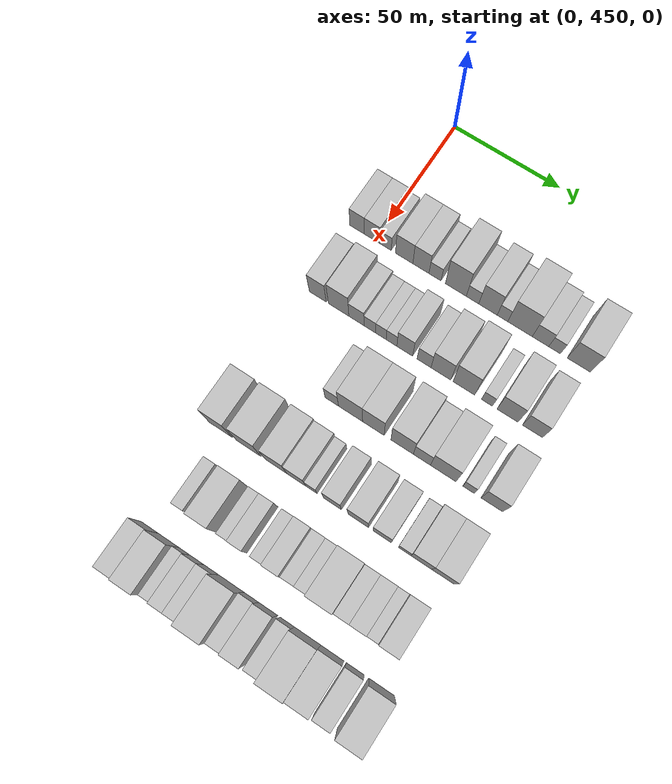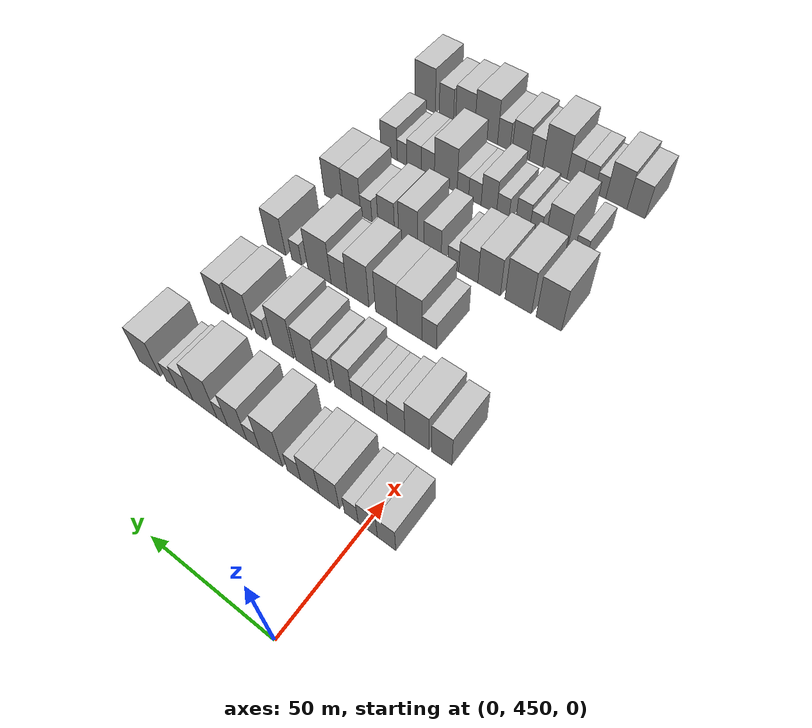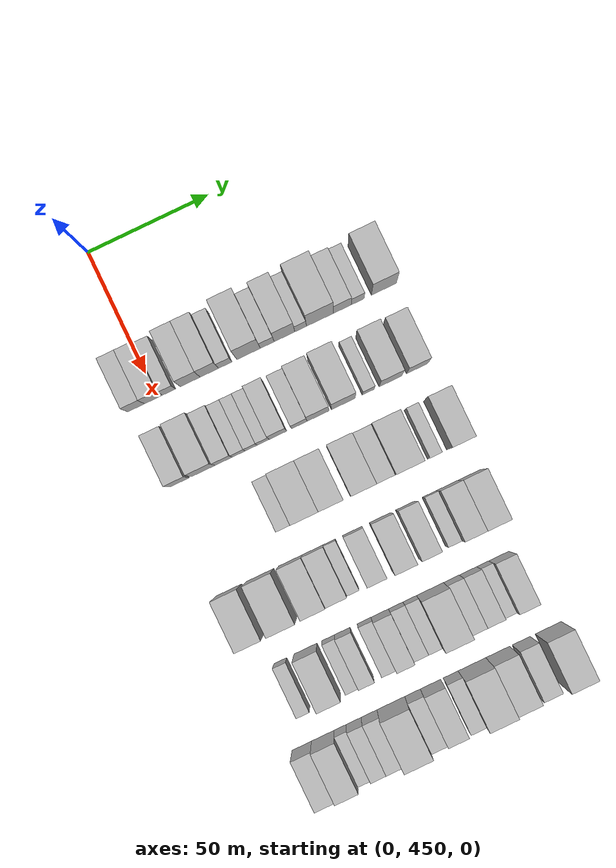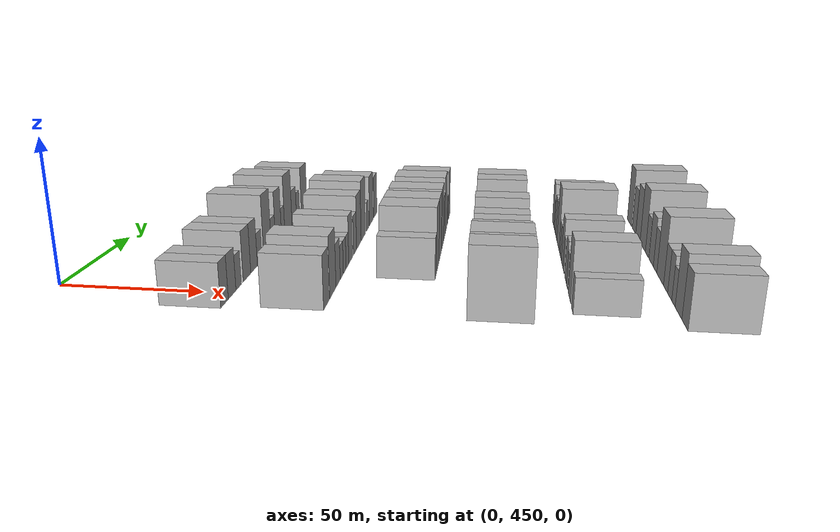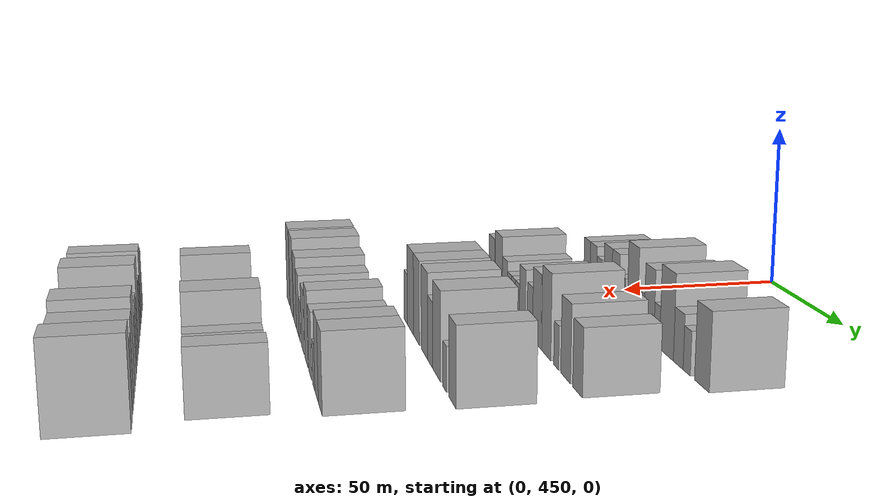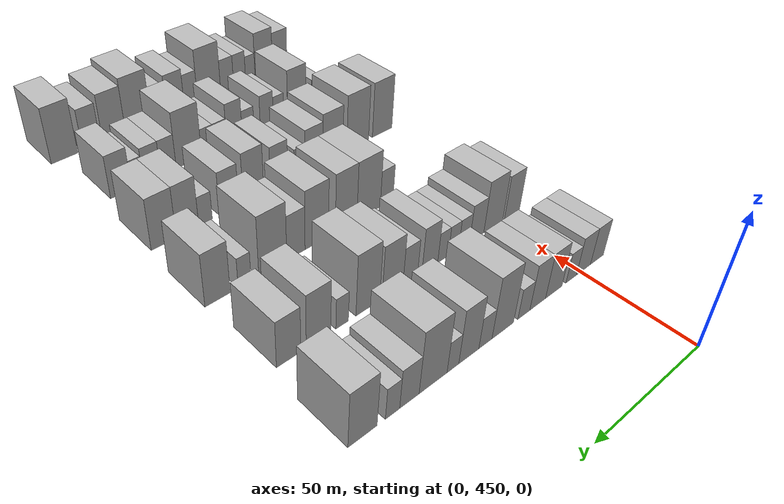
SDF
<sdf version="1.6">
 <world name="default">
  <model name="building_102">
   <static>1</static>
   <pose>50.0000 441.4241 0 0.000000 0.000000 0.000000</pose>
   <link name="link">
    <pose>0 0 7.50 0 0 0</pose>
    <collision name="collision"><geometry><box><size>20.0000 6.9413 15.0000</size></box></geometry></collision>
    <visual name="visual">
     <cast_shadows>0</cast_shadows>
     <geometry><box><size>20.0000 6.9413 15.0000</size></box></geometry>
     <material>
      <script>
       <uri>model://HANNAS_wall/materials/scripts</uri>
       <uri>model://HANNAS_wall/materials/textures</uri>
       <name>vrc/HANNAS_wall</name>
      </script>
     </material>
    </visual>
   </link>
  </model>
  <model name="building_103">
   <static>1</static>
   <pose>50.0000 448.5748 0 0.000000 0.000000 0.000000</pose>
   <link name="link">
    <pose>0 0 7.50 0 0 0</pose>
    <collision name="collision"><geometry><box><size>20.0000 7.3600 15.0000</size></box></geometry></collision>
    <visual name="visual">
     <cast_shadows>0</cast_shadows>
     <geometry><box><size>20.0000 7.3600 15.0000</size></box></geometry>
     <material>
      <script>
       <uri>model://HANNAS_wall/materials/scripts</uri>
       <uri>model://HANNAS_wall/materials/textures</uri>
       <name>vrc/HANNAS_wall</name>
      </script>
     </material>
    </visual>
   </link>
  </model>
  <model name="building_104">
   <static>1</static>
   <pose>50.0000 454.9493 0 0.000000 0.000000 0.000000</pose>
   <link name="link">
    <pose>0 0 6.00 0 0 0</pose>
    <collision name="collision"><geometry><box><size>20.0000 5.3890 12.0000</size></box></geometry></collision>
    <visual name="visual">
     <cast_shadows>0</cast_shadows>
     <geometry><box><size>20.0000 5.3890 12.0000</size></box></geometry>
     <material>
      <script>
       <uri>model://HANNAS_wall/materials/scripts</uri>
       <uri>model://HANNAS_wall/materials/textures</uri>
       <name>vrc/HANNAS_wall</name>
      </script>
     </material>
    </visual>
   </link>
  </model>
  <model name="building_105">
   <static>1</static>
   <pose>50.0000 463.7179 0 0.000000 0.000000 0.000000</pose>
   <link name="link">
    <pose>0 0 9.00 0 0 0</pose>
    <collision name="collision"><geometry><box><size>20.0000 8.1482 18.0000</size></box></geometry></collision>
    <visual name="visual">
     <cast_shadows>0</cast_shadows>
     <geometry><box><size>20.0000 8.1482 18.0000</size></box></geometry>
     <material>
      <script>
       <uri>model://HANNAS_wall/materials/scripts</uri>
       <uri>model://HANNAS_wall/materials/textures</uri>
       <name>vrc/HANNAS_wall</name>
      </script>
     </material>
    </visual>
   </link>
  </model>
  <model name="building_106">
   <static>1</static>
   <pose>50.0000 471.5602 0 0.000000 0.000000 0.000000</pose>
   <link name="link">
    <pose>0 0 9.00 0 0 0</pose>
    <collision name="collision"><geometry><box><size>20.0000 7.5363 18.0000</size></box></geometry></collision>
    <visual name="visual">
     <cast_shadows>0</cast_shadows>
     <geometry><box><size>20.0000 7.5363 18.0000</size></box></geometry>
     <material>
      <script>
       <uri>model://HANNAS_wall/materials/scripts</uri>
       <uri>model://HANNAS_wall/materials/textures</uri>
       <name>vrc/HANNAS_wall</name>
      </script>
     </material>
    </visual>
   </link>
  </model>
  <model name="building_107">
   <static>1</static>
   <pose>50.0000 478.1334 0 0.000000 0.000000 0.000000</pose>
   <link name="link">
    <pose>0 0 6.00 0 0 0</pose>
    <collision name="collision"><geometry><box><size>20.0000 5.6101 12.0000</size></box></geometry></collision>
    <visual name="visual">
     <cast_shadows>0</cast_shadows>
     <geometry><box><size>20.0000 5.6101 12.0000</size></box></geometry>
     <material>
      <script>
       <uri>model://HANNAS_wall/materials/scripts</uri>
       <uri>model://HANNAS_wall/materials/textures</uri>
       <name>vrc/HANNAS_wall</name>
      </script>
     </material>
    </visual>
   </link>
  </model>
  <model name="building_108">
   <static>1</static>
   <pose>50.0000 487.7715 0 0.000000 0.000000 0.000000</pose>
   <link name="link">
    <pose>0 0 12.00 0 0 0</pose>
    <collision name="collision"><geometry><box><size>20.0000 9.6661 24.0000</size></box></geometry></collision>
    <visual name="visual">
     <cast_shadows>0</cast_shadows>
     <geometry><box><size>20.0000 9.6661 24.0000</size></box></geometry>
     <material>
      <script>
       <uri>model://HANNAS_wall/materials/scripts</uri>
       <uri>model://HANNAS_wall/materials/textures</uri>
       <name>vrc/HANNAS_wall</name>
      </script>
     </material>
    </visual>
   </link>
  </model>
  <model name="building_109">
   <static>1</static>
   <pose>50.0000 495.4638 0 0.000000 0.000000 0.000000</pose>
   <link name="link">
    <pose>0 0 6.00 0 0 0</pose>
    <collision name="collision"><geometry><box><size>20.0000 5.7185 12.0000</size></box></geometry></collision>
    <visual name="visual">
     <cast_shadows>0</cast_shadows>
     <geometry><box><size>20.0000 5.7185 12.0000</size></box></geometry>
     <material>
      <script>
       <uri>model://HANNAS_wall/materials/scripts</uri>
       <uri>model://HANNAS_wall/materials/textures</uri>
       <name>vrc/HANNAS_wall</name>
      </script>
     </material>
    </visual>
   </link>
  </model>
  <model name="building_110">
   <static>1</static>
   <pose>50.0000 502.5486 0 0.000000 0.000000 0.000000</pose>
   <link name="link">
    <pose>0 0 10.50 0 0 0</pose>
    <collision name="collision"><geometry><box><size>20.0000 8.4511 21.0000</size></box></geometry></collision>
    <visual name="visual">
     <cast_shadows>0</cast_shadows>
     <geometry><box><size>20.0000 8.4511 21.0000</size></box></geometry>
     <material>
      <script>
       <uri>model://HANNAS_wall/materials/scripts</uri>
       <uri>model://HANNAS_wall/materials/textures</uri>
       <name>vrc/HANNAS_wall</name>
      </script>
     </material>
    </visual>
   </link>
  </model>
  <model name="building_111">
   <static>1</static>
   <pose>50.0000 509.1893 0 0.000000 0.000000 0.000000</pose>
   <link name="link">
    <pose>0 0 6.00 0 0 0</pose>
    <collision name="collision"><geometry><box><size>20.0000 4.8303 12.0000</size></box></geometry></collision>
    <visual name="visual">
     <cast_shadows>0</cast_shadows>
     <geometry><box><size>20.0000 4.8303 12.0000</size></box></geometry>
     <material>
      <script>
       <uri>model://HANNAS_wall/materials/scripts</uri>
       <uri>model://HANNAS_wall/materials/textures</uri>
       <name>vrc/HANNAS_wall</name>
      </script>
     </material>
    </visual>
   </link>
  </model>
  <model name="building_112">
   <static>1</static>
   <pose>50.0000 517.1288 0 0.000000 0.000000 0.000000</pose>
   <link name="link">
    <pose>0 0 12.00 0 0 0</pose>
    <collision name="collision"><geometry><box><size>20.0000 11.0485 24.0000</size></box></geometry></collision>
    <visual name="visual">
     <cast_shadows>0</cast_shadows>
     <geometry><box><size>20.0000 11.0485 24.0000</size></box></geometry>
     <material>
      <script>
       <uri>model://HANNAS_wall/materials/scripts</uri>
       <uri>model://HANNAS_wall/materials/textures</uri>
       <name>vrc/HANNAS_wall</name>
      </script>
     </material>
    </visual>
   </link>
  </model>
  <model name="building_113">
   <static>1</static>
   <pose>50.0000 526.3390 0 0.000000 0.000000 0.000000</pose>
   <link name="link">
    <pose>0 0 7.50 0 0 0</pose>
    <collision name="collision"><geometry><box><size>20.0000 7.3720 15.0000</size></box></geometry></collision>
    <visual name="visual">
     <cast_shadows>0</cast_shadows>
     <geometry><box><size>20.0000 7.3720 15.0000</size></box></geometry>
     <material>
      <script>
       <uri>model://HANNAS_wall/materials/scripts</uri>
       <uri>model://HANNAS_wall/materials/textures</uri>
       <name>vrc/HANNAS_wall</name>
      </script>
     </material>
    </visual>
   </link>
  </model>
  <model name="building_114">
   <static>1</static>
   <pose>50.0000 532.6628 0 0.000000 0.000000 0.000000</pose>
   <link name="link">
    <pose>0 0 6.00 0 0 0</pose>
    <collision name="collision"><geometry><box><size>20.0000 5.2757 12.0000</size></box></geometry></collision>
    <visual name="visual">
     <cast_shadows>0</cast_shadows>
     <geometry><box><size>20.0000 5.2757 12.0000</size></box></geometry>
     <material>
      <script>
       <uri>model://HANNAS_wall/materials/scripts</uri>
       <uri>model://HANNAS_wall/materials/textures</uri>
       <name>vrc/HANNAS_wall</name>
      </script>
     </material>
    </visual>
   </link>
  </model>
  <model name="building_115">
   <static>1</static>
   <pose>50.0000 543.4396 0 0.000000 0.000000 0.000000</pose>
   <link name="link">
    <pose>0 0 10.50 0 0 0</pose>
    <collision name="collision"><geometry><box><size>20.0000 10.2780 21.0000</size></box></geometry></collision>
    <visual name="visual">
     <cast_shadows>0</cast_shadows>
     <geometry><box><size>20.0000 10.2780 21.0000</size></box></geometry>
     <material>
      <script>
       <uri>model://HANNAS_wall/materials/scripts</uri>
       <uri>model://HANNAS_wall/materials/textures</uri>
       <name>vrc/HANNAS_wall</name>
      </script>
     </material>
    </visual>
   </link>
  </model>
  <model name="building_225">
   <static>1</static>
   <pose>82.0000 444.1324 0 0.000000 0.000000 0.000000</pose>
   <link name="link">
    <pose>0 0 9.00 0 0 0</pose>
    <collision name="collision"><geometry><box><size>20.0000 7.9593 18.0000</size></box></geometry></collision>
    <visual name="visual">
     <cast_shadows>0</cast_shadows>
     <geometry><box><size>20.0000 7.9593 18.0000</size></box></geometry>
     <material>
      <script>
       <uri>model://HANNAS_wall/materials/scripts</uri>
       <uri>model://HANNAS_wall/materials/textures</uri>
       <name>vrc/HANNAS_wall</name>
      </script>
     </material>
    </visual>
   </link>
  </model>
  <model name="building_226">
   <static>1</static>
   <pose>82.0000 453.9061 0 0.000000 0.000000 0.000000</pose>
   <link name="link">
    <pose>0 0 10.50 0 0 0</pose>
    <collision name="collision"><geometry><box><size>20.0000 9.5882 21.0000</size></box></geometry></collision>
    <visual name="visual">
     <cast_shadows>0</cast_shadows>
     <geometry><box><size>20.0000 9.5882 21.0000</size></box></geometry>
     <material>
      <script>
       <uri>model://HANNAS_wall/materials/scripts</uri>
       <uri>model://HANNAS_wall/materials/textures</uri>
       <name>vrc/HANNAS_wall</name>
      </script>
     </material>
    </visual>
   </link>
  </model>
  <model name="building_227">
   <static>1</static>
   <pose>82.0000 462.2295 0 0.000000 0.000000 0.000000</pose>
   <link name="link">
    <pose>0 0 7.50 0 0 0</pose>
    <collision name="collision"><geometry><box><size>20.0000 7.0585 15.0000</size></box></geometry></collision>
    <visual name="visual">
     <cast_shadows>0</cast_shadows>
     <geometry><box><size>20.0000 7.0585 15.0000</size></box></geometry>
     <material>
      <script>
       <uri>model://HANNAS_wall/materials/scripts</uri>
       <uri>model://HANNAS_wall/materials/textures</uri>
       <name>vrc/HANNAS_wall</name>
      </script>
     </material>
    </visual>
   </link>
  </model>
  <model name="building_228">
   <static>1</static>
   <pose>82.0000 468.4311 0 0.000000 0.000000 0.000000</pose>
   <link name="link">
    <pose>0 0 6.00 0 0 0</pose>
    <collision name="collision"><geometry><box><size>20.0000 5.3446 12.0000</size></box></geometry></collision>
    <visual name="visual">
     <cast_shadows>0</cast_shadows>
     <geometry><box><size>20.0000 5.3446 12.0000</size></box></geometry>
     <material>
      <script>
       <uri>model://HANNAS_wall/materials/scripts</uri>
       <uri>model://HANNAS_wall/materials/textures</uri>
       <name>vrc/HANNAS_wall</name>
      </script>
     </material>
    </visual>
   </link>
  </model>
  <model name="building_229">
   <static>1</static>
   <pose>82.0000 473.5592 0 0.000000 0.000000 0.000000</pose>
   <link name="link">
    <pose>0 0 6.00 0 0 0</pose>
    <collision name="collision"><geometry><box><size>20.0000 4.9115 12.0000</size></box></geometry></collision>
    <visual name="visual">
     <cast_shadows>0</cast_shadows>
     <geometry><box><size>20.0000 4.9115 12.0000</size></box></geometry>
     <material>
      <script>
       <uri>model://HANNAS_wall/materials/scripts</uri>
       <uri>model://HANNAS_wall/materials/textures</uri>
       <name>vrc/HANNAS_wall</name>
      </script>
     </material>
    </visual>
   </link>
  </model>
  <model name="building_230">
   <static>1</static>
   <pose>82.0000 478.4736 0 0.000000 0.000000 0.000000</pose>
   <link name="link">
    <pose>0 0 6.00 0 0 0</pose>
    <collision name="collision"><geometry><box><size>20.0000 4.9173 12.0000</size></box></geometry></collision>
    <visual name="visual">
     <cast_shadows>0</cast_shadows>
     <geometry><box><size>20.0000 4.9173 12.0000</size></box></geometry>
     <material>
      <script>
       <uri>model://HANNAS_wall/materials/scripts</uri>
       <uri>model://HANNAS_wall/materials/textures</uri>
       <name>vrc/HANNAS_wall</name>
      </script>
     </material>
    </visual>
   </link>
  </model>
  <model name="building_231">
   <static>1</static>
   <pose>82.0000 484.5443 0 0.000000 0.000000 0.000000</pose>
   <link name="link">
    <pose>0 0 9.00 0 0 0</pose>
    <collision name="collision"><geometry><box><size>20.0000 7.2240 18.0000</size></box></geometry></collision>
    <visual name="visual">
     <cast_shadows>0</cast_shadows>
     <geometry><box><size>20.0000 7.2240 18.0000</size></box></geometry>
     <material>
      <script>
       <uri>model://HANNAS_wall/materials/scripts</uri>
       <uri>model://HANNAS_wall/materials/textures</uri>
       <name>vrc/HANNAS_wall</name>
      </script>
     </material>
    </visual>
   </link>
  </model>
  <model name="building_232">
   <static>1</static>
   <pose>82.0000 493.3401 0 0.000000 0.000000 0.000000</pose>
   <link name="link">
    <pose>0 0 7.50 0 0 0</pose>
    <collision name="collision"><geometry><box><size>20.0000 6.3677 15.0000</size></box></geometry></collision>
    <visual name="visual">
     <cast_shadows>0</cast_shadows>
     <geometry><box><size>20.0000 6.3677 15.0000</size></box></geometry>
     <material>
      <script>
       <uri>model://HANNAS_wall/materials/scripts</uri>
       <uri>model://HANNAS_wall/materials/textures</uri>
       <name>vrc/HANNAS_wall</name>
      </script>
     </material>
    </visual>
   </link>
  </model>
  <model name="building_233">
   <static>1</static>
   <pose>82.0000 500.9981 0 0.000000 0.000000 0.000000</pose>
   <link name="link">
    <pose>0 0 10.50 0 0 0</pose>
    <collision name="collision"><geometry><box><size>20.0000 8.9482 21.0000</size></box></geometry></collision>
    <visual name="visual">
     <cast_shadows>0</cast_shadows>
     <geometry><box><size>20.0000 8.9482 21.0000</size></box></geometry>
     <material>
      <script>
       <uri>model://HANNAS_wall/materials/scripts</uri>
       <uri>model://HANNAS_wall/materials/textures</uri>
       <name>vrc/HANNAS_wall</name>
      </script>
     </material>
    </visual>
   </link>
  </model>
  <model name="building_234">
   <static>1</static>
   <pose>82.0000 511.3419 0 0.000000 0.000000 0.000000</pose>
   <link name="link">
    <pose>0 0 12.00 0 0 0</pose>
    <collision name="collision"><geometry><box><size>20.0000 9.7395 24.0000</size></box></geometry></collision>
    <visual name="visual">
     <cast_shadows>0</cast_shadows>
     <geometry><box><size>20.0000 9.7395 24.0000</size></box></geometry>
     <material>
      <script>
       <uri>model://HANNAS_wall/materials/scripts</uri>
       <uri>model://HANNAS_wall/materials/textures</uri>
       <name>vrc/HANNAS_wall</name>
      </script>
     </material>
    </visual>
   </link>
  </model>
  <model name="building_235">
   <static>1</static>
   <pose>82.0000 521.6767 0 0.000000 0.000000 0.000000</pose>
   <link name="link">
    <pose>0 0 6.00 0 0 0</pose>
    <collision name="collision"><geometry><box><size>20.0000 4.9303 12.0000</size></box></geometry></collision>
    <visual name="visual">
     <cast_shadows>0</cast_shadows>
     <geometry><box><size>20.0000 4.9303 12.0000</size></box></geometry>
     <material>
      <script>
       <uri>model://HANNAS_wall/materials/scripts</uri>
       <uri>model://HANNAS_wall/materials/textures</uri>
       <name>vrc/HANNAS_wall</name>
      </script>
     </material>
    </visual>
   </link>
  </model>
  <model name="building_236">
   <static>1</static>
   <pose>82.0000 530.7889 0 0.000000 0.000000 0.000000</pose>
   <link name="link">
    <pose>0 0 10.50 0 0 0</pose>
    <collision name="collision"><geometry><box><size>20.0000 9.2941 21.0000</size></box></geometry></collision>
    <visual name="visual">
     <cast_shadows>0</cast_shadows>
     <geometry><box><size>20.0000 9.2941 21.0000</size></box></geometry>
     <material>
      <script>
       <uri>model://HANNAS_wall/materials/scripts</uri>
       <uri>model://HANNAS_wall/materials/textures</uri>
       <name>vrc/HANNAS_wall</name>
      </script>
     </material>
    </visual>
   </link>
  </model>
  <model name="building_237">
   <static>1</static>
   <pose>82.0000 541.8277 0 0.000000 0.000000 0.000000</pose>
   <link name="link">
    <pose>0 0 9.00 0 0 0</pose>
    <collision name="collision"><geometry><box><size>20.0000 8.7834 18.0000</size></box></geometry></collision>
    <visual name="visual">
     <cast_shadows>0</cast_shadows>
     <geometry><box><size>20.0000 8.7834 18.0000</size></box></geometry>
     <material>
      <script>
       <uri>model://HANNAS_wall/materials/scripts</uri>
       <uri>model://HANNAS_wall/materials/textures</uri>
       <name>vrc/HANNAS_wall</name>
      </script>
     </material>
    </visual>
   </link>
  </model>
  <model name="building_345">
   <static>1</static>
   <pose>114.0000 472.1663 0 0.000000 0.000000 0.000000</pose>
   <link name="link">
    <pose>0 0 7.50 0 0 0</pose>
    <collision name="collision"><geometry><box><size>20.0000 6.1309 15.0000</size></box></geometry></collision>
    <visual name="visual">
     <cast_shadows>0</cast_shadows>
     <geometry><box><size>20.0000 6.1309 15.0000</size></box></geometry>
     <material>
      <script>
       <uri>model://HANNAS_wall/materials/scripts</uri>
       <uri>model://HANNAS_wall/materials/textures</uri>
       <name>vrc/HANNAS_wall</name>
      </script>
     </material>
    </visual>
   </link>
  </model>
  <model name="building_346">
   <static>1</static>
   <pose>114.0000 480.7063 0 0.000000 0.000000 0.000000</pose>
   <link name="link">
    <pose>0 0 12.00 0 0 0</pose>
    <collision name="collision"><geometry><box><size>20.0000 10.9490 24.0000</size></box></geometry></collision>
    <visual name="visual">
     <cast_shadows>0</cast_shadows>
     <geometry><box><size>20.0000 10.9490 24.0000</size></box></geometry>
     <material>
      <script>
       <uri>model://HANNAS_wall/materials/scripts</uri>
       <uri>model://HANNAS_wall/materials/textures</uri>
       <name>vrc/HANNAS_wall</name>
      </script>
     </material>
    </visual>
   </link>
  </model>
  <model name="building_347">
   <static>1</static>
   <pose>114.0000 491.0373 0 0.000000 0.000000 0.000000</pose>
   <link name="link">
    <pose>0 0 12.00 0 0 0</pose>
    <collision name="collision"><geometry><box><size>20.0000 9.7130 24.0000</size></box></geometry></collision>
    <visual name="visual">
     <cast_shadows>0</cast_shadows>
     <geometry><box><size>20.0000 9.7130 24.0000</size></box></geometry>
     <material>
      <script>
       <uri>model://HANNAS_wall/materials/scripts</uri>
       <uri>model://HANNAS_wall/materials/textures</uri>
       <name>vrc/HANNAS_wall</name>
      </script>
     </material>
    </visual>
   </link>
  </model>
  <model name="building_348">
   <static>1</static>
   <pose>114.0000 503.9293 0 0.000000 0.000000 0.000000</pose>
   <link name="link">
    <pose>0 0 12.00 0 0 0</pose>
    <collision name="collision"><geometry><box><size>20.0000 10.0711 24.0000</size></box></geometry></collision>
    <visual name="visual">
     <cast_shadows>0</cast_shadows>
     <geometry><box><size>20.0000 10.0711 24.0000</size></box></geometry>
     <material>
      <script>
       <uri>model://HANNAS_wall/materials/scripts</uri>
       <uri>model://HANNAS_wall/materials/textures</uri>
       <name>vrc/HANNAS_wall</name>
      </script>
     </material>
    </visual>
   </link>
  </model>
  <model name="building_349">
   <static>1</static>
   <pose>114.0000 512.7482 0 0.000000 0.000000 0.000000</pose>
   <link name="link">
    <pose>0 0 9.00 0 0 0</pose>
    <collision name="collision"><geometry><box><size>20.0000 7.5666 18.0000</size></box></geometry></collision>
    <visual name="visual">
     <cast_shadows>0</cast_shadows>
     <geometry><box><size>20.0000 7.5666 18.0000</size></box></geometry>
     <material>
      <script>
       <uri>model://HANNAS_wall/materials/scripts</uri>
       <uri>model://HANNAS_wall/materials/textures</uri>
       <name>vrc/HANNAS_wall</name>
      </script>
     </material>
    </visual>
   </link>
  </model>
  <model name="building_350">
   <static>1</static>
   <pose>114.0000 522.1427 0 0.000000 0.000000 0.000000</pose>
   <link name="link">
    <pose>0 0 12.00 0 0 0</pose>
    <collision name="collision"><geometry><box><size>20.0000 11.2224 24.0000</size></box></geometry></collision>
    <visual name="visual">
     <cast_shadows>0</cast_shadows>
     <geometry><box><size>20.0000 11.2224 24.0000</size></box></geometry>
     <material>
      <script>
       <uri>model://HANNAS_wall/materials/scripts</uri>
       <uri>model://HANNAS_wall/materials/textures</uri>
       <name>vrc/HANNAS_wall</name>
      </script>
     </material>
    </visual>
   </link>
  </model>
  <model name="building_351">
   <static>1</static>
   <pose>114.0000 533.2301 0 0.000000 0.000000 0.000000</pose>
   <link name="link">
    <pose>0 0 6.00 0 0 0</pose>
    <collision name="collision"><geometry><box><size>20.0000 4.9524 12.0000</size></box></geometry></collision>
    <visual name="visual">
     <cast_shadows>0</cast_shadows>
     <geometry><box><size>20.0000 4.9524 12.0000</size></box></geometry>
     <material>
      <script>
       <uri>model://HANNAS_wall/materials/scripts</uri>
       <uri>model://HANNAS_wall/materials/textures</uri>
       <name>vrc/HANNAS_wall</name>
      </script>
     </material>
    </visual>
   </link>
  </model>
  <model name="building_352">
   <static>1</static>
   <pose>114.0000 543.3763 0 0.000000 0.000000 0.000000</pose>
   <link name="link">
    <pose>0 0 10.50 0 0 0</pose>
    <collision name="collision"><geometry><box><size>20.0000 9.3400 21.0000</size></box></geometry></collision>
    <visual name="visual">
     <cast_shadows>0</cast_shadows>
     <geometry><box><size>20.0000 9.3400 21.0000</size></box></geometry>
     <material>
      <script>
       <uri>model://HANNAS_wall/materials/scripts</uri>
       <uri>model://HANNAS_wall/materials/textures</uri>
       <name>vrc/HANNAS_wall</name>
      </script>
     </material>
    </visual>
   </link>
  </model>
  <model name="building_455">
   <static>1</static>
   <pose>146.0000 443.2891 0 0.000000 0.000000 0.000000</pose>
   <link name="link">
    <pose>0 0 12.00 0 0 0</pose>
    <collision name="collision"><geometry><box><size>20.0000 10.4082 24.0000</size></box></geometry></collision>
    <visual name="visual">
     <cast_shadows>0</cast_shadows>
     <geometry><box><size>20.0000 10.4082 24.0000</size></box></geometry>
     <material>
      <script>
       <uri>model://HANNAS_wall/materials/scripts</uri>
       <uri>model://HANNAS_wall/materials/textures</uri>
       <name>vrc/HANNAS_wall</name>
      </script>
     </material>
    </visual>
   </link>
  </model>
  <model name="building_456">
   <static>1</static>
   <pose>146.0000 456.0938 0 0.000000 0.000000 0.000000</pose>
   <link name="link">
    <pose>0 0 12.00 0 0 0</pose>
    <collision name="collision"><geometry><box><size>20.0000 11.2013 24.0000</size></box></geometry></collision>
    <visual name="visual">
     <cast_shadows>0</cast_shadows>
     <geometry><box><size>20.0000 11.2013 24.0000</size></box></geometry>
     <material>
      <script>
       <uri>model://HANNAS_wall/materials/scripts</uri>
       <uri>model://HANNAS_wall/materials/textures</uri>
       <name>vrc/HANNAS_wall</name>
      </script>
     </material>
    </visual>
   </link>
  </model>
  <model name="building_457">
   <static>1</static>
   <pose>146.0000 468.5863 0 0.000000 0.000000 0.000000</pose>
   <link name="link">
    <pose>0 0 10.50 0 0 0</pose>
    <collision name="collision"><geometry><box><size>20.0000 9.7836 21.0000</size></box></geometry></collision>
    <visual name="visual">
     <cast_shadows>0</cast_shadows>
     <geometry><box><size>20.0000 9.7836 21.0000</size></box></geometry>
     <material>
      <script>
       <uri>model://HANNAS_wall/materials/scripts</uri>
       <uri>model://HANNAS_wall/materials/textures</uri>
       <name>vrc/HANNAS_wall</name>
      </script>
     </material>
    </visual>
   </link>
  </model>
  <model name="building_458">
   <static>1</static>
   <pose>146.0000 477.7740 0 0.000000 0.000000 0.000000</pose>
   <link name="link">
    <pose>0 0 9.00 0 0 0</pose>
    <collision name="collision"><geometry><box><size>20.0000 8.5920 18.0000</size></box></geometry></collision>
    <visual name="visual">
     <cast_shadows>0</cast_shadows>
     <geometry><box><size>20.0000 8.5920 18.0000</size></box></geometry>
     <material>
      <script>
       <uri>model://HANNAS_wall/materials/scripts</uri>
       <uri>model://HANNAS_wall/materials/textures</uri>
       <name>vrc/HANNAS_wall</name>
      </script>
     </material>
    </visual>
   </link>
  </model>
  <model name="building_459">
   <static>1</static>
   <pose>146.0000 484.5530 0 0.000000 0.000000 0.000000</pose>
   <link name="link">
    <pose>0 0 6.00 0 0 0</pose>
    <collision name="collision"><geometry><box><size>20.0000 4.9659 12.0000</size></box></geometry></collision>
    <visual name="visual">
     <cast_shadows>0</cast_shadows>
     <geometry><box><size>20.0000 4.9659 12.0000</size></box></geometry>
     <material>
      <script>
       <uri>model://HANNAS_wall/materials/scripts</uri>
       <uri>model://HANNAS_wall/materials/textures</uri>
       <name>vrc/HANNAS_wall</name>
      </script>
     </material>
    </visual>
   </link>
  </model>
  <model name="building_460">
   <static>1</static>
   <pose>146.0000 493.9769 0 0.000000 0.000000 0.000000</pose>
   <link name="link">
    <pose>0 0 9.00 0 0 0</pose>
    <collision name="collision"><geometry><box><size>20.0000 7.8821 18.0000</size></box></geometry></collision>
    <visual name="visual">
     <cast_shadows>0</cast_shadows>
     <geometry><box><size>20.0000 7.8821 18.0000</size></box></geometry>
     <material>
      <script>
       <uri>model://HANNAS_wall/materials/scripts</uri>
       <uri>model://HANNAS_wall/materials/textures</uri>
       <name>vrc/HANNAS_wall</name>
      </script>
     </material>
    </visual>
   </link>
  </model>
  <model name="building_461">
   <static>1</static>
   <pose>146.0000 505.3755 0 0.000000 0.000000 0.000000</pose>
   <link name="link">
    <pose>0 0 10.50 0 0 0</pose>
    <collision name="collision"><geometry><box><size>20.0000 8.9152 21.0000</size></box></geometry></collision>
    <visual name="visual">
     <cast_shadows>0</cast_shadows>
     <geometry><box><size>20.0000 8.9152 21.0000</size></box></geometry>
     <material>
      <script>
       <uri>model://HANNAS_wall/materials/scripts</uri>
       <uri>model://HANNAS_wall/materials/textures</uri>
       <name>vrc/HANNAS_wall</name>
      </script>
     </material>
    </visual>
   </link>
  </model>
  <model name="building_462">
   <static>1</static>
   <pose>146.0000 515.8240 0 0.000000 0.000000 0.000000</pose>
   <link name="link">
    <pose>0 0 9.00 0 0 0</pose>
    <collision name="collision"><geometry><box><size>20.0000 7.9817 18.0000</size></box></geometry></collision>
    <visual name="visual">
     <cast_shadows>0</cast_shadows>
     <geometry><box><size>20.0000 7.9817 18.0000</size></box></geometry>
     <material>
      <script>
       <uri>model://HANNAS_wall/materials/scripts</uri>
       <uri>model://HANNAS_wall/materials/textures</uri>
       <name>vrc/HANNAS_wall</name>
      </script>
     </material>
    </visual>
   </link>
  </model>
  <model name="building_463">
   <static>1</static>
   <pose>146.0000 525.5685 0 0.000000 0.000000 0.000000</pose>
   <link name="link">
    <pose>0 0 6.00 0 0 0</pose>
    <collision name="collision"><geometry><box><size>20.0000 5.5073 12.0000</size></box></geometry></collision>
    <visual name="visual">
     <cast_shadows>0</cast_shadows>
     <geometry><box><size>20.0000 5.5073 12.0000</size></box></geometry>
     <material>
      <script>
       <uri>model://HANNAS_wall/materials/scripts</uri>
       <uri>model://HANNAS_wall/materials/textures</uri>
       <name>vrc/HANNAS_wall</name>
      </script>
     </material>
    </visual>
   </link>
  </model>
  <model name="building_464">
   <static>1</static>
   <pose>146.0000 532.7721 0 0.000000 0.000000 0.000000</pose>
   <link name="link">
    <pose>0 0 10.50 0 0 0</pose>
    <collision name="collision"><geometry><box><size>20.0000 8.8997 21.0000</size></box></geometry></collision>
    <visual name="visual">
     <cast_shadows>0</cast_shadows>
     <geometry><box><size>20.0000 8.8997 21.0000</size></box></geometry>
     <material>
      <script>
       <uri>model://HANNAS_wall/materials/scripts</uri>
       <uri>model://HANNAS_wall/materials/textures</uri>
       <name>vrc/HANNAS_wall</name>
      </script>
     </material>
    </visual>
   </link>
  </model>
  <model name="building_465">
   <static>1</static>
   <pose>146.0000 542.0211 0 0.000000 0.000000 0.000000</pose>
   <link name="link">
    <pose>0 0 10.50 0 0 0</pose>
    <collision name="collision"><geometry><box><size>20.0000 9.5985 21.0000</size></box></geometry></collision>
    <visual name="visual">
     <cast_shadows>0</cast_shadows>
     <geometry><box><size>20.0000 9.5985 21.0000</size></box></geometry>
     <material>
      <script>
       <uri>model://HANNAS_wall/materials/scripts</uri>
       <uri>model://HANNAS_wall/materials/textures</uri>
       <name>vrc/HANNAS_wall</name>
      </script>
     </material>
    </visual>
   </link>
  </model>
  <model name="building_579">
   <static>1</static>
   <pose>178.0000 449.0648 0 0.000000 0.000000 0.000000</pose>
   <link name="link">
    <pose>0 0 6.00 0 0 0</pose>
    <collision name="collision"><geometry><box><size>20.0000 5.2473 12.0000</size></box></geometry></collision>
    <visual name="visual">
     <cast_shadows>0</cast_shadows>
     <geometry><box><size>20.0000 5.2473 12.0000</size></box></geometry>
     <material>
      <script>
       <uri>model://HANNAS_wall/materials/scripts</uri>
       <uri>model://HANNAS_wall/materials/textures</uri>
       <name>vrc/HANNAS_wall</name>
      </script>
     </material>
    </visual>
   </link>
  </model>
  <model name="building_580">
   <static>1</static>
   <pose>178.0000 459.4250 0 0.000000 0.000000 0.000000</pose>
   <link name="link">
    <pose>0 0 10.50 0 0 0</pose>
    <collision name="collision"><geometry><box><size>20.0000 9.4730 21.0000</size></box></geometry></collision>
    <visual name="visual">
     <cast_shadows>0</cast_shadows>
     <geometry><box><size>20.0000 9.4730 21.0000</size></box></geometry>
     <material>
      <script>
       <uri>model://HANNAS_wall/materials/scripts</uri>
       <uri>model://HANNAS_wall/materials/textures</uri>
       <name>vrc/HANNAS_wall</name>
      </script>
     </material>
    </visual>
   </link>
  </model>
  <model name="building_581">
   <static>1</static>
   <pose>178.0000 468.7355 0 0.000000 0.000000 0.000000</pose>
   <link name="link">
    <pose>0 0 6.00 0 0 0</pose>
    <collision name="collision"><geometry><box><size>20.0000 5.1481 12.0000</size></box></geometry></collision>
    <visual name="visual">
     <cast_shadows>0</cast_shadows>
     <geometry><box><size>20.0000 5.1481 12.0000</size></box></geometry>
     <material>
      <script>
       <uri>model://HANNAS_wall/materials/scripts</uri>
       <uri>model://HANNAS_wall/materials/textures</uri>
       <name>vrc/HANNAS_wall</name>
      </script>
     </material>
    </visual>
   </link>
  </model>
  <model name="building_582">
   <static>1</static>
   <pose>178.0000 474.5203 0 0.000000 0.000000 0.000000</pose>
   <link name="link">
    <pose>0 0 7.50 0 0 0</pose>
    <collision name="collision"><geometry><box><size>20.0000 6.4214 15.0000</size></box></geometry></collision>
    <visual name="visual">
     <cast_shadows>0</cast_shadows>
     <geometry><box><size>20.0000 6.4214 15.0000</size></box></geometry>
     <material>
      <script>
       <uri>model://HANNAS_wall/materials/scripts</uri>
       <uri>model://HANNAS_wall/materials/textures</uri>
       <name>vrc/HANNAS_wall</name>
      </script>
     </material>
    </visual>
   </link>
  </model>
  <model name="building_583">
   <static>1</static>
   <pose>178.0000 483.5751 0 0.000000 0.000000 0.000000</pose>
   <link name="link">
    <pose>0 0 6.00 0 0 0</pose>
    <collision name="collision"><geometry><box><size>20.0000 5.6882 12.0000</size></box></geometry></collision>
    <visual name="visual">
     <cast_shadows>0</cast_shadows>
     <geometry><box><size>20.0000 5.6882 12.0000</size></box></geometry>
     <material>
      <script>
       <uri>model://HANNAS_wall/materials/scripts</uri>
       <uri>model://HANNAS_wall/materials/textures</uri>
       <name>vrc/HANNAS_wall</name>
      </script>
     </material>
    </visual>
   </link>
  </model>
  <model name="building_584">
   <static>1</static>
   <pose>178.0000 490.0367 0 0.000000 0.000000 0.000000</pose>
   <link name="link">
    <pose>0 0 9.00 0 0 0</pose>
    <collision name="collision"><geometry><box><size>20.0000 7.2350 18.0000</size></box></geometry></collision>
    <visual name="visual">
     <cast_shadows>0</cast_shadows>
     <geometry><box><size>20.0000 7.2350 18.0000</size></box></geometry>
     <material>
      <script>
       <uri>model://HANNAS_wall/materials/scripts</uri>
       <uri>model://HANNAS_wall/materials/textures</uri>
       <name>vrc/HANNAS_wall</name>
      </script>
     </material>
    </visual>
   </link>
  </model>
  <model name="building_585">
   <static>1</static>
   <pose>178.0000 496.6017 0 0.000000 0.000000 0.000000</pose>
   <link name="link">
    <pose>0 0 6.00 0 0 0</pose>
    <collision name="collision"><geometry><box><size>20.0000 5.8950 12.0000</size></box></geometry></collision>
    <visual name="visual">
     <cast_shadows>0</cast_shadows>
     <geometry><box><size>20.0000 5.8950 12.0000</size></box></geometry>
     <material>
      <script>
       <uri>model://HANNAS_wall/materials/scripts</uri>
       <uri>model://HANNAS_wall/materials/textures</uri>
       <name>vrc/HANNAS_wall</name>
      </script>
     </material>
    </visual>
   </link>
  </model>
  <model name="building_586">
   <static>1</static>
   <pose>178.0000 502.3338 0 0.000000 0.000000 0.000000</pose>
   <link name="link">
    <pose>0 0 6.00 0 0 0</pose>
    <collision name="collision"><geometry><box><size>20.0000 5.5693 12.0000</size></box></geometry></collision>
    <visual name="visual">
     <cast_shadows>0</cast_shadows>
     <geometry><box><size>20.0000 5.5693 12.0000</size></box></geometry>
     <material>
      <script>
       <uri>model://HANNAS_wall/materials/scripts</uri>
       <uri>model://HANNAS_wall/materials/textures</uri>
       <name>vrc/HANNAS_wall</name>
      </script>
     </material>
    </visual>
   </link>
  </model>
  <model name="building_587">
   <static>1</static>
   <pose>178.0000 510.6873 0 0.000000 0.000000 0.000000</pose>
   <link name="link">
    <pose>0 0 12.00 0 0 0</pose>
    <collision name="collision"><geometry><box><size>20.0000 11.1376 24.0000</size></box></geometry></collision>
    <visual name="visual">
     <cast_shadows>0</cast_shadows>
     <geometry><box><size>20.0000 11.1376 24.0000</size></box></geometry>
     <material>
      <script>
       <uri>model://HANNAS_wall/materials/scripts</uri>
       <uri>model://HANNAS_wall/materials/textures</uri>
       <name>vrc/HANNAS_wall</name>
      </script>
     </material>
    </visual>
   </link>
  </model>
  <model name="building_588">
   <static>1</static>
   <pose>178.0000 519.5398 0 0.000000 0.000000 0.000000</pose>
   <link name="link">
    <pose>0 0 7.50 0 0 0</pose>
    <collision name="collision"><geometry><box><size>20.0000 6.5675 15.0000</size></box></geometry></collision>
    <visual name="visual">
     <cast_shadows>0</cast_shadows>
     <geometry><box><size>20.0000 6.5675 15.0000</size></box></geometry>
     <material>
      <script>
       <uri>model://HANNAS_wall/materials/scripts</uri>
       <uri>model://HANNAS_wall/materials/textures</uri>
       <name>vrc/HANNAS_wall</name>
      </script>
     </material>
    </visual>
   </link>
  </model>
  <model name="building_589">
   <static>1</static>
   <pose>178.0000 526.4149 0 0.000000 0.000000 0.000000</pose>
   <link name="link">
    <pose>0 0 7.50 0 0 0</pose>
    <collision name="collision"><geometry><box><size>20.0000 7.1826 15.0000</size></box></geometry></collision>
    <visual name="visual">
     <cast_shadows>0</cast_shadows>
     <geometry><box><size>20.0000 7.1826 15.0000</size></box></geometry>
     <material>
      <script>
       <uri>model://HANNAS_wall/materials/scripts</uri>
       <uri>model://HANNAS_wall/materials/textures</uri>
       <name>vrc/HANNAS_wall</name>
      </script>
     </material>
    </visual>
   </link>
  </model>
  <model name="building_590">
   <static>1</static>
   <pose>178.0000 532.4617 0 0.000000 0.000000 0.000000</pose>
   <link name="link">
    <pose>0 0 6.00 0 0 0</pose>
    <collision name="collision"><geometry><box><size>20.0000 4.9110 12.0000</size></box></geometry></collision>
    <visual name="visual">
     <cast_shadows>0</cast_shadows>
     <geometry><box><size>20.0000 4.9110 12.0000</size></box></geometry>
     <material>
      <script>
       <uri>model://HANNAS_wall/materials/scripts</uri>
       <uri>model://HANNAS_wall/materials/textures</uri>
       <name>vrc/HANNAS_wall</name>
      </script>
     </material>
    </visual>
   </link>
  </model>
  <model name="building_591">
   <static>1</static>
   <pose>178.0000 539.1047 0 0.000000 0.000000 0.000000</pose>
   <link name="link">
    <pose>0 0 9.00 0 0 0</pose>
    <collision name="collision"><geometry><box><size>20.0000 8.3750 18.0000</size></box></geometry></collision>
    <visual name="visual">
     <cast_shadows>0</cast_shadows>
     <geometry><box><size>20.0000 8.3750 18.0000</size></box></geometry>
     <material>
      <script>
       <uri>model://HANNAS_wall/materials/scripts</uri>
       <uri>model://HANNAS_wall/materials/textures</uri>
       <name>vrc/HANNAS_wall</name>
      </script>
     </material>
    </visual>
   </link>
  </model>
  <model name="building_707">
   <static>1</static>
   <pose>210.0000 442.5001 0 0.000000 0.000000 0.000000</pose>
   <link name="link">
    <pose>0 0 9.00 0 0 0</pose>
    <collision name="collision"><geometry><box><size>20.0000 7.9893 18.0000</size></box></geometry></collision>
    <visual name="visual">
     <cast_shadows>0</cast_shadows>
     <geometry><box><size>20.0000 7.9893 18.0000</size></box></geometry>
     <material>
      <script>
       <uri>model://HANNAS_wall/materials/scripts</uri>
       <uri>model://HANNAS_wall/materials/textures</uri>
       <name>vrc/HANNAS_wall</name>
      </script>
     </material>
    </visual>
   </link>
  </model>
  <model name="building_708">
   <static>1</static>
   <pose>210.0000 451.1658 0 0.000000 0.000000 0.000000</pose>
   <link name="link">
    <pose>0 0 10.50 0 0 0</pose>
    <collision name="collision"><geometry><box><size>20.0000 9.3420 21.0000</size></box></geometry></collision>
    <visual name="visual">
     <cast_shadows>0</cast_shadows>
     <geometry><box><size>20.0000 9.3420 21.0000</size></box></geometry>
     <material>
      <script>
       <uri>model://HANNAS_wall/materials/scripts</uri>
       <uri>model://HANNAS_wall/materials/textures</uri>
       <name>vrc/HANNAS_wall</name>
      </script>
     </material>
    </visual>
   </link>
  </model>
  <model name="building_709">
   <static>1</static>
   <pose>210.0000 458.3159 0 0.000000 0.000000 0.000000</pose>
   <link name="link">
    <pose>0 0 6.00 0 0 0</pose>
    <collision name="collision"><geometry><box><size>20.0000 4.9582 12.0000</size></box></geometry></collision>
    <visual name="visual">
     <cast_shadows>0</cast_shadows>
     <geometry><box><size>20.0000 4.9582 12.0000</size></box></geometry>
     <material>
      <script>
       <uri>model://HANNAS_wall/materials/scripts</uri>
       <uri>model://HANNAS_wall/materials/textures</uri>
       <name>vrc/HANNAS_wall</name>
      </script>
     </material>
    </visual>
   </link>
  </model>
  <model name="building_710">
   <static>1</static>
   <pose>210.0000 463.8918 0 0.000000 0.000000 0.000000</pose>
   <link name="link">
    <pose>0 0 7.50 0 0 0</pose>
    <collision name="collision"><geometry><box><size>20.0000 6.1937 15.0000</size></box></geometry></collision>
    <visual name="visual">
     <cast_shadows>0</cast_shadows>
     <geometry><box><size>20.0000 6.1937 15.0000</size></box></geometry>
     <material>
      <script>
       <uri>model://HANNAS_wall/materials/scripts</uri>
       <uri>model://HANNAS_wall/materials/textures</uri>
       <name>vrc/HANNAS_wall</name>
      </script>
     </material>
    </visual>
   </link>
  </model>
  <model name="building_711">
   <static>1</static>
   <pose>210.0000 470.2882 0 0.000000 0.000000 0.000000</pose>
   <link name="link">
    <pose>0 0 7.50 0 0 0</pose>
    <collision name="collision"><geometry><box><size>20.0000 6.5991 15.0000</size></box></geometry></collision>
    <visual name="visual">
     <cast_shadows>0</cast_shadows>
     <geometry><box><size>20.0000 6.5991 15.0000</size></box></geometry>
     <material>
      <script>
       <uri>model://HANNAS_wall/materials/scripts</uri>
       <uri>model://HANNAS_wall/materials/textures</uri>
       <name>vrc/HANNAS_wall</name>
      </script>
     </material>
    </visual>
   </link>
  </model>
  <model name="building_712">
   <static>1</static>
   <pose>210.0000 479.3030 0 0.000000 0.000000 0.000000</pose>
   <link name="link">
    <pose>0 0 12.00 0 0 0</pose>
    <collision name="collision"><geometry><box><size>20.0000 11.4304 24.0000</size></box></geometry></collision>
    <visual name="visual">
     <cast_shadows>0</cast_shadows>
     <geometry><box><size>20.0000 11.4304 24.0000</size></box></geometry>
     <material>
      <script>
       <uri>model://HANNAS_wall/materials/scripts</uri>
       <uri>model://HANNAS_wall/materials/textures</uri>
       <name>vrc/HANNAS_wall</name>
      </script>
     </material>
    </visual>
   </link>
  </model>
  <model name="building_713">
   <static>1</static>
   <pose>210.0000 488.2156 0 0.000000 0.000000 0.000000</pose>
   <link name="link">
    <pose>0 0 7.50 0 0 0</pose>
    <collision name="collision"><geometry><box><size>20.0000 6.3948 15.0000</size></box></geometry></collision>
    <visual name="visual">
     <cast_shadows>0</cast_shadows>
     <geometry><box><size>20.0000 6.3948 15.0000</size></box></geometry>
     <material>
      <script>
       <uri>model://HANNAS_wall/materials/scripts</uri>
       <uri>model://HANNAS_wall/materials/textures</uri>
       <name>vrc/HANNAS_wall</name>
      </script>
     </material>
    </visual>
   </link>
  </model>
  <model name="building_714">
   <static>1</static>
   <pose>210.0000 495.6023 0 0.000000 0.000000 0.000000</pose>
   <link name="link">
    <pose>0 0 9.00 0 0 0</pose>
    <collision name="collision"><geometry><box><size>20.0000 8.3787 18.0000</size></box></geometry></collision>
    <visual name="visual">
     <cast_shadows>0</cast_shadows>
     <geometry><box><size>20.0000 8.3787 18.0000</size></box></geometry>
     <material>
      <script>
       <uri>model://HANNAS_wall/materials/scripts</uri>
       <uri>model://HANNAS_wall/materials/textures</uri>
       <name>vrc/HANNAS_wall</name>
      </script>
     </material>
    </visual>
   </link>
  </model>
  <model name="building_715">
   <static>1</static>
   <pose>210.0000 503.8896 0 0.000000 0.000000 0.000000</pose>
   <link name="link">
    <pose>0 0 7.50 0 0 0</pose>
    <collision name="collision"><geometry><box><size>20.0000 6.1958 15.0000</size></box></geometry></collision>
    <visual name="visual">
     <cast_shadows>0</cast_shadows>
     <geometry><box><size>20.0000 6.1958 15.0000</size></box></geometry>
     <material>
      <script>
       <uri>model://HANNAS_wall/materials/scripts</uri>
       <uri>model://HANNAS_wall/materials/textures</uri>
       <name>vrc/HANNAS_wall</name>
      </script>
     </material>
    </visual>
   </link>
  </model>
  <model name="building_716">
   <static>1</static>
   <pose>210.0000 512.7027 0 0.000000 0.000000 0.000000</pose>
   <link name="link">
    <pose>0 0 12.00 0 0 0</pose>
    <collision name="collision"><geometry><box><size>20.0000 11.4304 24.0000</size></box></geometry></collision>
    <visual name="visual">
     <cast_shadows>0</cast_shadows>
     <geometry><box><size>20.0000 11.4304 24.0000</size></box></geometry>
     <material>
      <script>
       <uri>model://HANNAS_wall/materials/scripts</uri>
       <uri>model://HANNAS_wall/materials/textures</uri>
       <name>vrc/HANNAS_wall</name>
      </script>
     </material>
    </visual>
   </link>
  </model>
  <model name="building_717">
   <static>1</static>
   <pose>210.0000 523.3490 0 0.000000 0.000000 0.000000</pose>
   <link name="link">
    <pose>0 0 10.50 0 0 0</pose>
    <collision name="collision"><geometry><box><size>20.0000 9.8621 21.0000</size></box></geometry></collision>
    <visual name="visual">
     <cast_shadows>0</cast_shadows>
     <geometry><box><size>20.0000 9.8621 21.0000</size></box></geometry>
     <material>
      <script>
       <uri>model://HANNAS_wall/materials/scripts</uri>
       <uri>model://HANNAS_wall/materials/textures</uri>
       <name>vrc/HANNAS_wall</name>
      </script>
     </material>
    </visual>
   </link>
  </model>
  <model name="building_718">
   <static>1</static>
   <pose>210.0000 533.0236 0 0.000000 0.000000 0.000000</pose>
   <link name="link">
    <pose>0 0 9.00 0 0 0</pose>
    <collision name="collision"><geometry><box><size>20.0000 7.4871 18.0000</size></box></geometry></collision>
    <visual name="visual">
     <cast_shadows>0</cast_shadows>
     <geometry><box><size>20.0000 7.4871 18.0000</size></box></geometry>
     <material>
      <script>
       <uri>model://HANNAS_wall/materials/scripts</uri>
       <uri>model://HANNAS_wall/materials/textures</uri>
       <name>vrc/HANNAS_wall</name>
      </script>
     </material>
    </visual>
   </link>
  </model>
  <model name="building_719">
   <static>1</static>
   <pose>210.0000 544.1621 0 0.000000 0.000000 0.000000</pose>
   <link name="link">
    <pose>0 0 12.00 0 0 0</pose>
    <collision name="collision"><geometry><box><size>20.0000 10.7899 24.0000</size></box></geometry></collision>
    <visual name="visual">
     <cast_shadows>0</cast_shadows>
     <geometry><box><size>20.0000 10.7899 24.0000</size></box></geometry>
     <material>
      <script>
       <uri>model://HANNAS_wall/materials/scripts</uri>
       <uri>model://HANNAS_wall/materials/textures</uri>
       <name>vrc/HANNAS_wall</name>
      </script>
     </material>
    </visual>
   </link>
  </model>
 </world>
</sdf>
